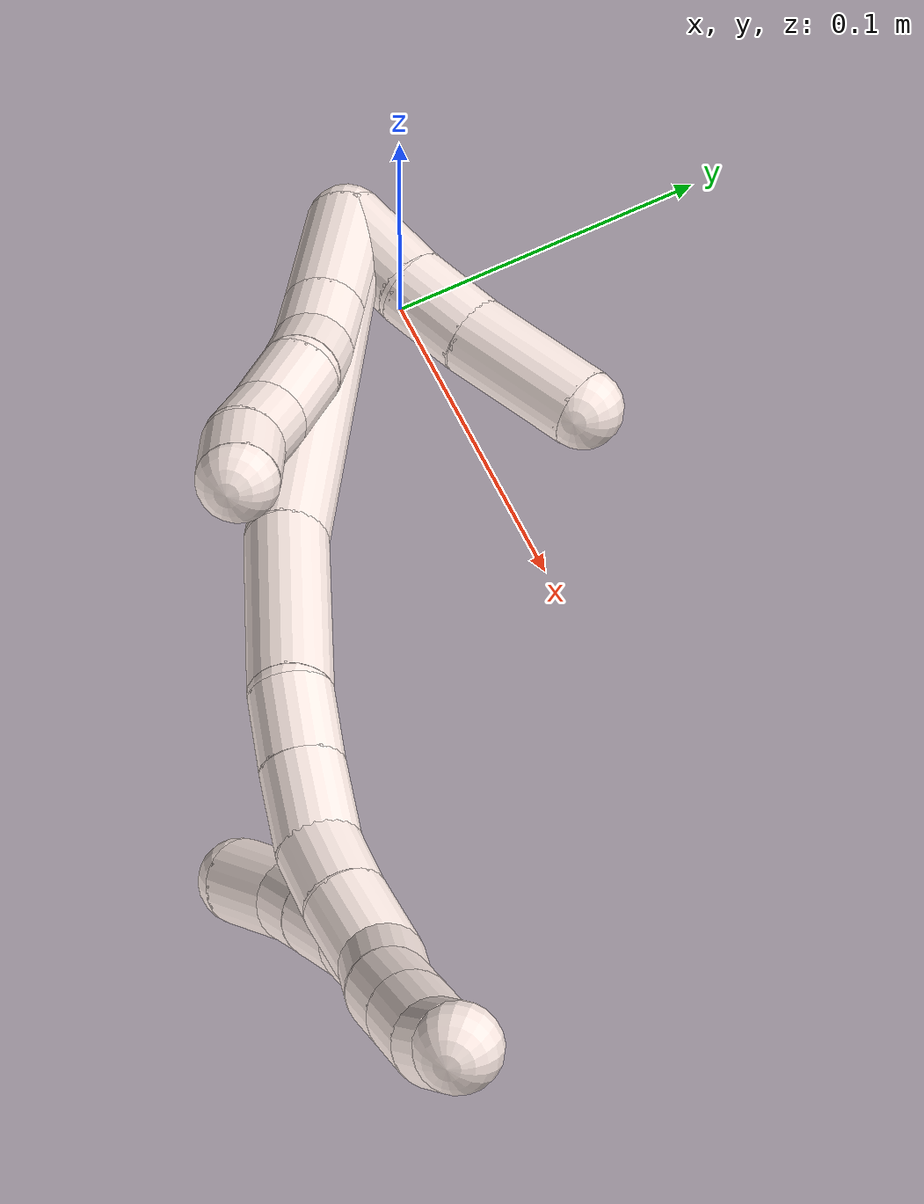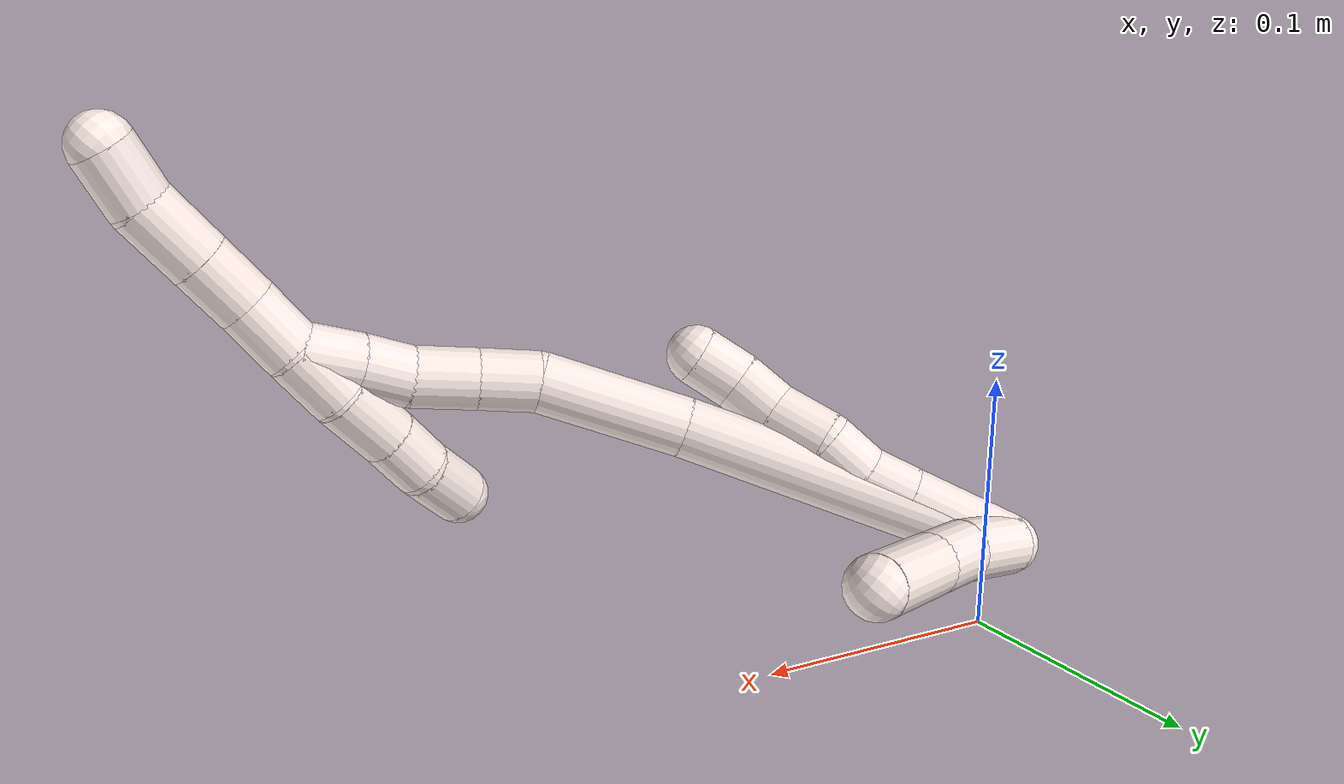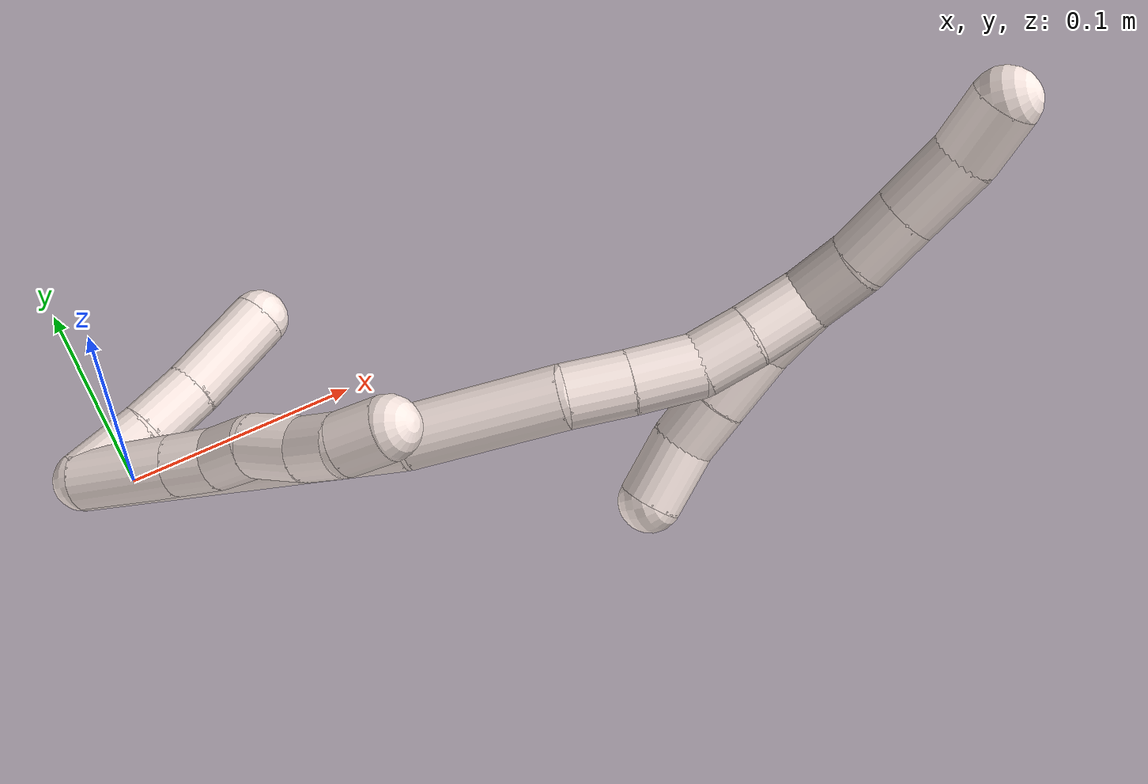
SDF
<sdf version="1.7">
 <world name="default">
  <model name="11">
   <static>0</static>
   <link name="11">
    <collision name="collision-cylinder-e_1_2_8">
     <pose>0.005576 -0.001992 0.021591 0.091984 0.251719 0.011647</pose>
     <geometry><cylinder><radius>0.0125</radius><length>0.044777</length></cylinder></geometry>
     <surface>
      <friction><ode><mu>1.16</mu><mu2>1.16</mu2><slip1>0</slip1><slip2>0</slip2></ode></friction>
      <contact><ode><kp>1e+06</kp><kd>1</kd><max_vel>0</max_vel><min_depth>0.001</min_depth></ode></contact>
     </surface>
    </collision>
    <visual name="visual-cylinder-e_1_2_8">
     <pose>0.005576 -0.001992 0.021591 0.091984 0.251719 0.011647</pose>
     <geometry><cylinder><radius>0.0125</radius><length>0.044777</length></cylinder></geometry>
     <material><ambient>1 0.933333 0.909804 1</ambient></material>
    </visual>
    <collision name="collision-cylinder-e_2_8_9">
     <pose>0.013523 -0.004865 0.052884 0.090619 0.238695 0.010874</pose>
     <geometry><cylinder><radius>0.0125</radius><length>0.020052</length></cylinder></geometry>
     <surface>
      <friction><ode><mu>1.16</mu><mu2>1.16</mu2><slip1>0</slip1><slip2>0</slip2></ode></friction>
      <contact><ode><kp>1e+06</kp><kd>1</kd><max_vel>0</max_vel><min_depth>0.001</min_depth></ode></contact>
     </surface>
    </collision>
    <visual name="visual-cylinder-e_2_8_9">
     <pose>0.013523 -0.004865 0.052884 0.090619 0.238695 0.010874</pose>
     <geometry><cylinder><radius>0.0125</radius><length>0.020052</length></cylinder></geometry>
     <material><ambient>1 0.933333 0.909804 1</ambient></material>
    </visual>
    <collision name="collision-cylinder-e_3_9_10">
     <pose>0.016073 -0.004987 0.072878 -0.073635 0.01744 -0.000642</pose>
     <geometry><cylinder><radius>0.0125</radius><length>0.020643</length></cylinder></geometry>
     <surface>
      <friction><ode><mu>1.16</mu><mu2>1.16</mu2><slip1>0</slip1><slip2>0</slip2></ode></friction>
      <contact><ode><kp>1e+06</kp><kd>1</kd><max_vel>0</max_vel><min_depth>0.001</min_depth></ode></contact>
     </surface>
    </collision>
    <visual name="visual-cylinder-e_3_9_10">
     <pose>0.016073 -0.004987 0.072878 -0.073635 0.01744 -0.000642</pose>
     <geometry><cylinder><radius>0.0125</radius><length>0.020643</length></cylinder></geometry>
     <material><ambient>1 0.933333 0.909804 1</ambient></material>
    </visual>
    <collision name="collision-cylinder-e_4_10_11">
     <pose>0.017059 -0.007211 0.094936 0.248246 0.066296 0.008274</pose>
     <geometry><cylinder><radius>0.0125</radius><length>0.024331</length></cylinder></geometry>
     <surface>
      <friction><ode><mu>1.16</mu><mu2>1.16</mu2><slip1>0</slip1><slip2>0</slip2></ode></friction>
      <contact><ode><kp>1e+06</kp><kd>1</kd><max_vel>0</max_vel><min_depth>0.001</min_depth></ode></contact>
     </surface>
    </collision>
    <visual name="visual-cylinder-e_4_10_11">
     <pose>0.017059 -0.007211 0.094936 0.248246 0.066296 0.008274</pose>
     <geometry><cylinder><radius>0.0125</radius><length>0.024331</length></cylinder></geometry>
     <material><ambient>1 0.933333 0.909804 1</ambient></material>
    </visual>
    <collision name="collision-cylinder-e_5_11_12">
     <pose>0.017483 -0.010966 0.116673 0.077332 -0.038265 -0.00148</pose>
     <geometry><cylinder><radius>0.0125</radius><length>0.020015</length></cylinder></geometry>
     <surface>
      <friction><ode><mu>1.16</mu><mu2>1.16</mu2><slip1>0</slip1><slip2>0</slip2></ode></friction>
      <contact><ode><kp>1e+06</kp><kd>1</kd><max_vel>0</max_vel><min_depth>0.001</min_depth></ode></contact>
     </surface>
    </collision>
    <visual name="visual-cylinder-e_5_11_12">
     <pose>0.017483 -0.010966 0.116673 0.077332 -0.038265 -0.00148</pose>
     <geometry><cylinder><radius>0.0125</radius><length>0.020015</length></cylinder></geometry>
     <material><ambient>1 0.933333 0.909804 1</ambient></material>
    </visual>
    <collision name="collision-cylinder-e_6_12_6">
     <pose>0.019162 -0.010952 0.13649 -0.079637 0.205789 -0.008228</pose>
     <geometry><cylinder><radius>0.0125</radius><length>0.020183</length></cylinder></geometry>
     <surface>
      <friction><ode><mu>1.16</mu><mu2>1.16</mu2><slip1>0</slip1><slip2>0</slip2></ode></friction>
      <contact><ode><kp>1e+06</kp><kd>1</kd><max_vel>0</max_vel><min_depth>0.001</min_depth></ode></contact>
     </surface>
    </collision>
    <visual name="visual-cylinder-e_6_12_6">
     <pose>0.019162 -0.010952 0.13649 -0.079637 0.205789 -0.008228</pose>
     <geometry><cylinder><radius>0.0125</radius><length>0.020183</length></cylinder></geometry>
     <material><ambient>1 0.933333 0.909804 1</ambient></material>
    </visual>
    <collision name="collision-cylinder-e_1_2_13">
     <pose>0.012135 0.005839 0.008218 -0.617729 0.877616 -0.297292</pose>
     <geometry><cylinder><radius>0.0125</radius><length>0.031552</length></cylinder></geometry>
     <surface>
      <friction><ode><mu>1.16</mu><mu2>1.16</mu2><slip1>0</slip1><slip2>0</slip2></ode></friction>
      <contact><ode><kp>1e+06</kp><kd>1</kd><max_vel>0</max_vel><min_depth>0.001</min_depth></ode></contact>
     </surface>
    </collision>
    <visual name="visual-cylinder-e_1_2_13">
     <pose>0.012135 0.005839 0.008218 -0.617729 0.877616 -0.297292</pose>
     <geometry><cylinder><radius>0.0125</radius><length>0.031552</length></cylinder></geometry>
     <material><ambient>1 0.933333 0.909804 1</ambient></material>
    </visual>
    <collision name="collision-cylinder-e_2_13_14">
     <pose>0.034846 0.017089 0.021406 -0.827783 0.963564 -0.451534</pose>
     <geometry><cylinder><radius>0.0125</radius><length>0.025756</length></cylinder></geometry>
     <surface>
      <friction><ode><mu>1.16</mu><mu2>1.16</mu2><slip1>0</slip1><slip2>0</slip2></ode></friction>
      <contact><ode><kp>1e+06</kp><kd>1</kd><max_vel>0</max_vel><min_depth>0.001</min_depth></ode></contact>
     </surface>
    </collision>
    <visual name="visual-cylinder-e_2_13_14">
     <pose>0.034846 0.017089 0.021406 -0.827783 0.963564 -0.451534</pose>
     <geometry><cylinder><radius>0.0125</radius><length>0.025756</length></cylinder></geometry>
     <material><ambient>1 0.933333 0.909804 1</ambient></material>
    </visual>
    <collision name="collision-cylinder-e_3_14_5">
     <pose>0.062359 0.032874 0.0342 -0.92467 0.916422 -0.482048</pose>
     <geometry><cylinder><radius>0.0125</radius><length>0.042692</length></cylinder></geometry>
     <surface>
      <friction><ode><mu>1.16</mu><mu2>1.16</mu2><slip1>0</slip1><slip2>0</slip2></ode></friction>
      <contact><ode><kp>1e+06</kp><kd>1</kd><max_vel>0</max_vel><min_depth>0.001</min_depth></ode></contact>
     </surface>
    </collision>
    <visual name="visual-cylinder-e_3_14_5">
     <pose>0.062359 0.032874 0.0342 -0.92467 0.916422 -0.482048</pose>
     <geometry><cylinder><radius>0.0125</radius><length>0.042692</length></cylinder></geometry>
     <material><ambient>1 0.933333 0.909804 1</ambient></material>
    </visual>
    <collision name="collision-cylinder-e_1_2_15">
     <pose>0.023357 -0.00875 0.065481 0.132842 0.339842 0.022825</pose>
     <geometry><cylinder><radius>0.0125</radius><length>0.140142</length></cylinder></geometry>
     <surface>
      <friction><ode><mu>1.16</mu><mu2>1.16</mu2><slip1>0</slip1><slip2>0</slip2></ode></friction>
      <contact><ode><kp>1e+06</kp><kd>1</kd><max_vel>0</max_vel><min_depth>0.001</min_depth></ode></contact>
     </surface>
    </collision>
    <visual name="visual-cylinder-e_1_2_15">
     <pose>0.023357 -0.00875 0.065481 0.132842 0.339842 0.022825</pose>
     <geometry><cylinder><radius>0.0125</radius><length>0.140142</length></cylinder></geometry>
     <material><ambient>1 0.933333 0.909804 1</ambient></material>
    </visual>
    <collision name="collision-cylinder-e_2_15_16">
     <pose>0.060116 -0.017987 0.158978 0.017371 0.446132 0.003941</pose>
     <geometry><cylinder><radius>0.0125</radius><length>0.06212</length></cylinder></geometry>
     <surface>
      <friction><ode><mu>1.16</mu><mu2>1.16</mu2><slip1>0</slip1><slip2>0</slip2></ode></friction>
      <contact><ode><kp>1e+06</kp><kd>1</kd><max_vel>0</max_vel><min_depth>0.001</min_depth></ode></contact>
     </surface>
    </collision>
    <visual name="visual-cylinder-e_2_15_16">
     <pose>0.060116 -0.017987 0.158978 0.017371 0.446132 0.003941</pose>
     <geometry><cylinder><radius>0.0125</radius><length>0.06212</length></cylinder></geometry>
     <material><ambient>1 0.933333 0.909804 1</ambient></material>
    </visual>
    <collision name="collision-cylinder-e_3_16_17">
     <pose>0.081436 -0.01945 0.196359 0.103853 0.699246 0.037894</pose>
     <geometry><cylinder><radius>0.0125</radius><length>0.024604</length></cylinder></geometry>
     <surface>
      <friction><ode><mu>1.16</mu><mu2>1.16</mu2><slip1>0</slip1><slip2>0</slip2></ode></friction>
      <contact><ode><kp>1e+06</kp><kd>1</kd><max_vel>0</max_vel><min_depth>0.001</min_depth></ode></contact>
     </surface>
    </collision>
    <visual name="visual-cylinder-e_3_16_17">
     <pose>0.081436 -0.01945 0.196359 0.103853 0.699246 0.037894</pose>
     <geometry><cylinder><radius>0.0125</radius><length>0.024604</length></cylinder></geometry>
     <material><ambient>1 0.933333 0.909804 1</ambient></material>
    </visual>
    <collision name="collision-cylinder-e_4_17_18">
     <pose>0.098099 -0.021055 0.215589 0.063702 0.724199 0.024137</pose>
     <geometry><cylinder><radius>0.0125</radius><length>0.026395</length></cylinder></geometry>
     <surface>
      <friction><ode><mu>1.16</mu><mu2>1.16</mu2><slip1>0</slip1><slip2>0</slip2></ode></friction>
      <contact><ode><kp>1e+06</kp><kd>1</kd><max_vel>0</max_vel><min_depth>0.001</min_depth></ode></contact>
     </surface>
    </collision>
    <visual name="visual-cylinder-e_4_17_18">
     <pose>0.098099 -0.021055 0.215589 0.063702 0.724199 0.024137</pose>
     <geometry><cylinder><radius>0.0125</radius><length>0.026395</length></cylinder></geometry>
     <material><ambient>1 0.933333 0.909804 1</ambient></material>
    </visual>
    <collision name="collision-cylinder-e_5_18_19">
     <pose>0.113101 -0.019178 0.23393 -0.287503 0.616122 -0.092051</pose>
     <geometry><cylinder><radius>0.0125</radius><length>0.02166</length></cylinder></geometry>
     <surface>
      <friction><ode><mu>1.16</mu><mu2>1.16</mu2><slip1>0</slip1><slip2>0</slip2></ode></friction>
      <contact><ode><kp>1e+06</kp><kd>1</kd><max_vel>0</max_vel><min_depth>0.001</min_depth></ode></contact>
     </surface>
    </collision>
    <visual name="visual-cylinder-e_5_18_19">
     <pose>0.113101 -0.019178 0.23393 -0.287503 0.616122 -0.092051</pose>
     <geometry><cylinder><radius>0.0125</radius><length>0.02166</length></cylinder></geometry>
     <material><ambient>1 0.933333 0.909804 1</ambient></material>
    </visual>
    <collision name="collision-cylinder-e_6_19_1">
     <pose>0.127297 -0.013275 0.251498 -0.357558 0.685523 -0.128792</pose>
     <geometry><cylinder><radius>0.0125</radius><length>0.025078</length></cylinder></geometry>
     <surface>
      <friction><ode><mu>1.16</mu><mu2>1.16</mu2><slip1>0</slip1><slip2>0</slip2></ode></friction>
      <contact><ode><kp>1e+06</kp><kd>1</kd><max_vel>0</max_vel><min_depth>0.001</min_depth></ode></contact>
     </surface>
    </collision>
    <visual name="visual-cylinder-e_6_19_1">
     <pose>0.127297 -0.013275 0.251498 -0.357558 0.685523 -0.128792</pose>
     <geometry><cylinder><radius>0.0125</radius><length>0.025078</length></cylinder></geometry>
     <material><ambient>1 0.933333 0.909804 1</ambient></material>
    </visual>
    <collision name="collision-cylinder-e_1_1_20">
     <pose>0.133641 -0.015902 0.249963 2.62588 -0.129818 -0.483306</pose>
     <geometry><cylinder><radius>0.0125</radius><length>0.024641</length></cylinder></geometry>
     <surface>
      <friction><ode><mu>1.16</mu><mu2>1.16</mu2><slip1>0</slip1><slip2>0</slip2></ode></friction>
      <contact><ode><kp>1e+06</kp><kd>1</kd><max_vel>0</max_vel><min_depth>0.001</min_depth></ode></contact>
     </surface>
    </collision>
    <visual name="visual-cylinder-e_1_1_20">
     <pose>0.133641 -0.015902 0.249963 2.62588 -0.129818 -0.483306</pose>
     <geometry><cylinder><radius>0.0125</radius><length>0.024641</length></cylinder></geometry>
     <material><ambient>1 0.933333 0.909804 1</ambient></material>
    </visual>
    <collision name="collision-cylinder-e_2_20_21">
     <pose>0.128765 -0.030003 0.228635 2.49501 -0.240038 -0.691014</pose>
     <geometry><cylinder><radius>0.0125</radius><length>0.027602</length></cylinder></geometry>
     <surface>
      <friction><ode><mu>1.16</mu><mu2>1.16</mu2><slip1>0</slip1><slip2>0</slip2></ode></friction>
      <contact><ode><kp>1e+06</kp><kd>1</kd><max_vel>0</max_vel><min_depth>0.001</min_depth></ode></contact>
     </surface>
    </collision>
    <visual name="visual-cylinder-e_2_20_21">
     <pose>0.128765 -0.030003 0.228635 2.49501 -0.240038 -0.691014</pose>
     <geometry><cylinder><radius>0.0125</radius><length>0.027602</length></cylinder></geometry>
     <material><ambient>1 0.933333 0.909804 1</ambient></material>
    </visual>
    <collision name="collision-cylinder-e_3_21_22">
     <pose>0.123418 -0.044309 0.209593 2.50021 -0.195838 -0.575092</pose>
     <geometry><cylinder><radius>0.0125</radius><length>0.021228</length></cylinder></geometry>
     <surface>
      <friction><ode><mu>1.16</mu><mu2>1.16</mu2><slip1>0</slip1><slip2>0</slip2></ode></friction>
      <contact><ode><kp>1e+06</kp><kd>1</kd><max_vel>0</max_vel><min_depth>0.001</min_depth></ode></contact>
     </surface>
    </collision>
    <visual name="visual-cylinder-e_3_21_22">
     <pose>0.123418 -0.044309 0.209593 2.50021 -0.195838 -0.575092</pose>
     <geometry><cylinder><radius>0.0125</radius><length>0.021228</length></cylinder></geometry>
     <material><ambient>1 0.933333 0.909804 1</ambient></material>
    </visual>
    <collision name="collision-cylinder-e_4_22_4">
     <pose>0.116801 -0.059956 0.193096 2.28447 -0.350294 -0.739063</pose>
     <geometry><cylinder><radius>0.0125</radius><length>0.026528</length></cylinder></geometry>
     <surface>
      <friction><ode><mu>1.16</mu><mu2>1.16</mu2><slip1>0</slip1><slip2>0</slip2></ode></friction>
      <contact><ode><kp>1e+06</kp><kd>1</kd><max_vel>0</max_vel><min_depth>0.001</min_depth></ode></contact>
     </surface>
    </collision>
    <visual name="visual-cylinder-e_4_22_4">
     <pose>0.116801 -0.059956 0.193096 2.28447 -0.350294 -0.739063</pose>
     <geometry><cylinder><radius>0.0125</radius><length>0.026528</length></cylinder></geometry>
     <material><ambient>1 0.933333 0.909804 1</ambient></material>
    </visual>
    <collision name="collision-cylinder-e_1_1_23">
     <pose>0.135981 -0.005418 0.272066 -0.370707 0.060494 -0.011346</pose>
     <geometry><cylinder><radius>0.0125</radius><length>0.024667</length></cylinder></geometry>
     <surface>
      <friction><ode><mu>1.16</mu><mu2>1.16</mu2><slip1>0</slip1><slip2>0</slip2></ode></friction>
      <contact><ode><kp>1e+06</kp><kd>1</kd><max_vel>0</max_vel><min_depth>0.001</min_depth></ode></contact>
     </surface>
    </collision>
    <visual name="visual-cylinder-e_1_1_23">
     <pose>0.135981 -0.005418 0.272066 -0.370707 0.060494 -0.011346</pose>
     <geometry><cylinder><radius>0.0125</radius><length>0.024667</length></cylinder></geometry>
     <material><ambient>1 0.933333 0.909804 1</ambient></material>
    </visual>
    <collision name="collision-cylinder-e_2_23_24">
     <pose>0.138369 0.004806 0.293795 -0.512038 0.138685 -0.036357</pose>
     <geometry><cylinder><radius>0.0125</radius><length>0.023755</length></cylinder></geometry>
     <surface>
      <friction><ode><mu>1.16</mu><mu2>1.16</mu2><slip1>0</slip1><slip2>0</slip2></ode></friction>
      <contact><ode><kp>1e+06</kp><kd>1</kd><max_vel>0</max_vel><min_depth>0.001</min_depth></ode></contact>
     </surface>
    </collision>
    <visual name="visual-cylinder-e_2_23_24">
     <pose>0.138369 0.004806 0.293795 -0.512038 0.138685 -0.036357</pose>
     <geometry><cylinder><radius>0.0125</radius><length>0.023755</length></cylinder></geometry>
     <material><ambient>1 0.933333 0.909804 1</ambient></material>
    </visual>
    <collision name="collision-cylinder-e_3_24_25">
     <pose>0.141935 0.01726 0.316106 -0.506639 0.13865 -0.035948</pose>
     <geometry><cylinder><radius>0.0125</radius><length>0.027844</length></cylinder></geometry>
     <surface>
      <friction><ode><mu>1.16</mu><mu2>1.16</mu2><slip1>0</slip1><slip2>0</slip2></ode></friction>
      <contact><ode><kp>1e+06</kp><kd>1</kd><max_vel>0</max_vel><min_depth>0.001</min_depth></ode></contact>
     </surface>
    </collision>
    <visual name="visual-cylinder-e_3_24_25">
     <pose>0.141935 0.01726 0.316106 -0.506639 0.13865 -0.035948</pose>
     <geometry><cylinder><radius>0.0125</radius><length>0.027844</length></cylinder></geometry>
     <material><ambient>1 0.933333 0.909804 1</ambient></material>
    </visual>
    <collision name="collision-cylinder-e_4_25_3">
     <pose>0.143249 0.031029 0.337668 -0.640061 -0.051441 0.017052</pose>
     <geometry><cylinder><radius>0.0125</radius><length>0.023733</length></cylinder></geometry>
     <surface>
      <friction><ode><mu>1.16</mu><mu2>1.16</mu2><slip1>0</slip1><slip2>0</slip2></ode></friction>
      <contact><ode><kp>1e+06</kp><kd>1</kd><max_vel>0</max_vel><min_depth>0.001</min_depth></ode></contact>
     </surface>
    </collision>
    <visual name="visual-cylinder-e_4_25_3">
     <pose>0.143249 0.031029 0.337668 -0.640061 -0.051441 0.017052</pose>
     <geometry><cylinder><radius>0.0125</radius><length>0.023733</length></cylinder></geometry>
     <material><ambient>1 0.933333 0.909804 1</ambient></material>
    </visual>
    <collision name="collision-sphere-3">
     <pose>0.142639 0.038107 0.347173 0 -0 0</pose>
     <geometry><sphere><radius>0.0125</radius></sphere></geometry>
     <surface>
      <friction><ode><mu>1.16</mu><mu2>1.16</mu2><slip1>0</slip1><slip2>0</slip2></ode></friction>
      <contact><ode><kp>1e+06</kp><kd>1</kd><max_vel>0</max_vel><min_depth>0.001</min_depth></ode></contact>
     </surface>
    </collision>
    <visual name="visual-sphere-3">
     <pose>0.142639 0.038107 0.347173 0 -0 0</pose>
     <geometry><sphere><radius>0.0125</radius></sphere></geometry>
     <material><ambient>1 0.933333 0.909804 1</ambient></material>
    </visual>
    <collision name="collision-sphere-25">
     <pose>0.143859 0.023951 0.328163 0 -0 0</pose>
     <geometry><sphere><radius>0.0125</radius></sphere></geometry>
     <surface>
      <friction><ode><mu>1.16</mu><mu2>1.16</mu2><slip1>0</slip1><slip2>0</slip2></ode></friction>
      <contact><ode><kp>1e+06</kp><kd>1</kd><max_vel>0</max_vel><min_depth>0.001</min_depth></ode></contact>
     </surface>
    </collision>
    <visual name="visual-sphere-25">
     <pose>0.143859 0.023951 0.328163 0 -0 0</pose>
     <geometry><sphere><radius>0.0125</radius></sphere></geometry>
     <material><ambient>1 0.933333 0.909804 1</ambient></material>
    </visual>
    <collision name="collision-sphere-24">
     <pose>0.140011 0.010569 0.30405 0 -0 0</pose>
     <geometry><sphere><radius>0.0125</radius></sphere></geometry>
     <surface>
      <friction><ode><mu>1.16</mu><mu2>1.16</mu2><slip1>0</slip1><slip2>0</slip2></ode></friction>
      <contact><ode><kp>1e+06</kp><kd>1</kd><max_vel>0</max_vel><min_depth>0.001</min_depth></ode></contact>
     </surface>
    </collision>
    <visual name="visual-sphere-24">
     <pose>0.140011 0.010569 0.30405 0 -0 0</pose>
     <geometry><sphere><radius>0.0125</radius></sphere></geometry>
     <material><ambient>1 0.933333 0.909804 1</ambient></material>
    </visual>
    <collision name="collision-sphere-23">
     <pose>0.136727 -0.000958 0.28354 0 -0 0</pose>
     <geometry><sphere><radius>0.0125</radius></sphere></geometry>
     <surface>
      <friction><ode><mu>1.16</mu><mu2>1.16</mu2><slip1>0</slip1><slip2>0</slip2></ode></friction>
      <contact><ode><kp>1e+06</kp><kd>1</kd><max_vel>0</max_vel><min_depth>0.001</min_depth></ode></contact>
     </surface>
    </collision>
    <visual name="visual-sphere-23">
     <pose>0.136727 -0.000958 0.28354 0 -0 0</pose>
     <geometry><sphere><radius>0.0125</radius></sphere></geometry>
     <material><ambient>1 0.933333 0.909804 1</ambient></material>
    </visual>
    <collision name="collision-sphere-4">
     <pose>0.112249 -0.069374 0.18494 0 -0 0</pose>
     <geometry><sphere><radius>0.0125</radius></sphere></geometry>
     <surface>
      <friction><ode><mu>1.16</mu><mu2>1.16</mu2><slip1>0</slip1><slip2>0</slip2></ode></friction>
      <contact><ode><kp>1e+06</kp><kd>1</kd><max_vel>0</max_vel><min_depth>0.001</min_depth></ode></contact>
     </surface>
    </collision>
    <visual name="visual-sphere-4">
     <pose>0.112249 -0.069374 0.18494 0 -0 0</pose>
     <geometry><sphere><radius>0.0125</radius></sphere></geometry>
     <material><ambient>1 0.933333 0.909804 1</ambient></material>
    </visual>
    <collision name="collision-sphere-22">
     <pose>0.121353 -0.050538 0.201251 0 -0 0</pose>
     <geometry><sphere><radius>0.0125</radius></sphere></geometry>
     <surface>
      <friction><ode><mu>1.16</mu><mu2>1.16</mu2><slip1>0</slip1><slip2>0</slip2></ode></friction>
      <contact><ode><kp>1e+06</kp><kd>1</kd><max_vel>0</max_vel><min_depth>0.001</min_depth></ode></contact>
     </surface>
    </collision>
    <visual name="visual-sphere-22">
     <pose>0.121353 -0.050538 0.201251 0 -0 0</pose>
     <geometry><sphere><radius>0.0125</radius></sphere></geometry>
     <material><ambient>1 0.933333 0.909804 1</ambient></material>
    </visual>
    <collision name="collision-sphere-21">
     <pose>0.125484 -0.03808 0.217936 0 -0 0</pose>
     <geometry><sphere><radius>0.0125</radius></sphere></geometry>
     <surface>
      <friction><ode><mu>1.16</mu><mu2>1.16</mu2><slip1>0</slip1><slip2>0</slip2></ode></friction>
      <contact><ode><kp>1e+06</kp><kd>1</kd><max_vel>0</max_vel><min_depth>0.001</min_depth></ode></contact>
     </surface>
    </collision>
    <visual name="visual-sphere-21">
     <pose>0.125484 -0.03808 0.217936 0 -0 0</pose>
     <geometry><sphere><radius>0.0125</radius></sphere></geometry>
     <material><ambient>1 0.933333 0.909804 1</ambient></material>
    </visual>
    <collision name="collision-sphere-20">
     <pose>0.132046 -0.021927 0.239335 0 -0 0</pose>
     <geometry><sphere><radius>0.0125</radius></sphere></geometry>
     <surface>
      <friction><ode><mu>1.16</mu><mu2>1.16</mu2><slip1>0</slip1><slip2>0</slip2></ode></friction>
      <contact><ode><kp>1e+06</kp><kd>1</kd><max_vel>0</max_vel><min_depth>0.001</min_depth></ode></contact>
     </surface>
    </collision>
    <visual name="visual-sphere-20">
     <pose>0.132046 -0.021927 0.239335 0 -0 0</pose>
     <geometry><sphere><radius>0.0125</radius></sphere></geometry>
     <material><ambient>1 0.933333 0.909804 1</ambient></material>
    </visual>
    <collision name="collision-sphere-12">
     <pose>0.0171 -0.011738 0.126643 0 -0 0</pose>
     <geometry><sphere><radius>0.0125</radius></sphere></geometry>
     <surface>
      <friction><ode><mu>1.16</mu><mu2>1.16</mu2><slip1>0</slip1><slip2>0</slip2></ode></friction>
      <contact><ode><kp>1e+06</kp><kd>1</kd><max_vel>0</max_vel><min_depth>0.001</min_depth></ode></contact>
     </surface>
    </collision>
    <visual name="visual-sphere-12">
     <pose>0.0171 -0.011738 0.126643 0 -0 0</pose>
     <geometry><sphere><radius>0.0125</radius></sphere></geometry>
     <material><ambient>1 0.933333 0.909804 1</ambient></material>
    </visual>
    <collision name="collision-sphere-11">
     <pose>0.017865 -0.010193 0.106703 0 -0 0</pose>
     <geometry><sphere><radius>0.0125</radius></sphere></geometry>
     <surface>
      <friction><ode><mu>1.16</mu><mu2>1.16</mu2><slip1>0</slip1><slip2>0</slip2></ode></friction>
      <contact><ode><kp>1e+06</kp><kd>1</kd><max_vel>0</max_vel><min_depth>0.001</min_depth></ode></contact>
     </surface>
    </collision>
    <visual name="visual-sphere-11">
     <pose>0.017865 -0.010193 0.106703 0 -0 0</pose>
     <geometry><sphere><radius>0.0125</radius></sphere></geometry>
     <material><ambient>1 0.933333 0.909804 1</ambient></material>
    </visual>
    <collision name="collision-sphere-10">
     <pose>0.016253 -0.004228 0.08317 0 -0 0</pose>
     <geometry><sphere><radius>0.0125</radius></sphere></geometry>
     <surface>
      <friction><ode><mu>1.16</mu><mu2>1.16</mu2><slip1>0</slip1><slip2>0</slip2></ode></friction>
      <contact><ode><kp>1e+06</kp><kd>1</kd><max_vel>0</max_vel><min_depth>0.001</min_depth></ode></contact>
     </surface>
    </collision>
    <visual name="visual-sphere-10">
     <pose>0.016253 -0.004228 0.08317 0 -0 0</pose>
     <geometry><sphere><radius>0.0125</radius></sphere></geometry>
     <material><ambient>1 0.933333 0.909804 1</ambient></material>
    </visual>
    <collision name="collision-sphere-9">
     <pose>0.015893 -0.005746 0.062586 0 -0 0</pose>
     <geometry><sphere><radius>0.0125</radius></sphere></geometry>
     <surface>
      <friction><ode><mu>1.16</mu><mu2>1.16</mu2><slip1>0</slip1><slip2>0</slip2></ode></friction>
      <contact><ode><kp>1e+06</kp><kd>1</kd><max_vel>0</max_vel><min_depth>0.001</min_depth></ode></contact>
     </surface>
    </collision>
    <visual name="visual-sphere-9">
     <pose>0.015893 -0.005746 0.062586 0 -0 0</pose>
     <geometry><sphere><radius>0.0125</radius></sphere></geometry>
     <material><ambient>1 0.933333 0.909804 1</ambient></material>
    </visual>
    <collision name="collision-sphere-2">
     <geometry><sphere><radius>0.0125</radius></sphere></geometry>
     <surface>
      <friction><ode><mu>1.16</mu><mu2>1.16</mu2><slip1>0</slip1><slip2>0</slip2></ode></friction>
      <contact><ode><kp>1e+06</kp><kd>1</kd><max_vel>0</max_vel><min_depth>0.001</min_depth></ode></contact>
     </surface>
    </collision>
    <visual name="visual-sphere-2">
     <geometry><sphere><radius>0.0125</radius></sphere></geometry>
     <material><ambient>1 0.933333 0.909804 1</ambient></material>
    </visual>
    <collision name="collision-sphere-19">
     <pose>0.119359 -0.016672 0.242406 0 -0 0</pose>
     <geometry><sphere><radius>0.0125</radius></sphere></geometry>
     <surface>
      <friction><ode><mu>1.16</mu><mu2>1.16</mu2><slip1>0</slip1><slip2>0</slip2></ode></friction>
      <contact><ode><kp>1e+06</kp><kd>1</kd><max_vel>0</max_vel><min_depth>0.001</min_depth></ode></contact>
     </surface>
    </collision>
    <visual name="visual-sphere-19">
     <pose>0.119359 -0.016672 0.242406 0 -0 0</pose>
     <geometry><sphere><radius>0.0125</radius></sphere></geometry>
     <material><ambient>1 0.933333 0.909804 1</ambient></material>
    </visual>
    <collision name="collision-sphere-8">
     <pose>0.011153 -0.003983 0.043182 0 -0 0</pose>
     <geometry><sphere><radius>0.0125</radius></sphere></geometry>
     <surface>
      <friction><ode><mu>1.16</mu><mu2>1.16</mu2><slip1>0</slip1><slip2>0</slip2></ode></friction>
      <contact><ode><kp>1e+06</kp><kd>1</kd><max_vel>0</max_vel><min_depth>0.001</min_depth></ode></contact>
     </surface>
    </collision>
    <visual name="visual-sphere-8">
     <pose>0.011153 -0.003983 0.043182 0 -0 0</pose>
     <geometry><sphere><radius>0.0125</radius></sphere></geometry>
     <material><ambient>1 0.933333 0.909804 1</ambient></material>
    </visual>
    <collision name="collision-sphere-6">
     <pose>0.021224 -0.010166 0.146337 0 -0 0</pose>
     <geometry><sphere><radius>0.0125</radius></sphere></geometry>
     <surface>
      <friction><ode><mu>1.16</mu><mu2>1.16</mu2><slip1>0</slip1><slip2>0</slip2></ode></friction>
      <contact><ode><kp>1e+06</kp><kd>1</kd><max_vel>0</max_vel><min_depth>0.001</min_depth></ode></contact>
     </surface>
    </collision>
    <visual name="visual-sphere-6">
     <pose>0.021224 -0.010166 0.146337 0 -0 0</pose>
     <geometry><sphere><radius>0.0125</radius></sphere></geometry>
     <material><ambient>1 0.933333 0.909804 1</ambient></material>
    </visual>
    <collision name="collision-sphere-13">
     <pose>0.02427 0.011677 0.016435 0 -0 0</pose>
     <geometry><sphere><radius>0.0125</radius></sphere></geometry>
     <surface>
      <friction><ode><mu>1.16</mu><mu2>1.16</mu2><slip1>0</slip1><slip2>0</slip2></ode></friction>
      <contact><ode><kp>1e+06</kp><kd>1</kd><max_vel>0</max_vel><min_depth>0.001</min_depth></ode></contact>
     </surface>
    </collision>
    <visual name="visual-sphere-13">
     <pose>0.02427 0.011677 0.016435 0 -0 0</pose>
     <geometry><sphere><radius>0.0125</radius></sphere></geometry>
     <material><ambient>1 0.933333 0.909804 1</ambient></material>
    </visual>
    <collision name="collision-sphere-14">
     <pose>0.045422 0.0225 0.026378 0 -0 0</pose>
     <geometry><sphere><radius>0.0125</radius></sphere></geometry>
     <surface>
      <friction><ode><mu>1.16</mu><mu2>1.16</mu2><slip1>0</slip1><slip2>0</slip2></ode></friction>
      <contact><ode><kp>1e+06</kp><kd>1</kd><max_vel>0</max_vel><min_depth>0.001</min_depth></ode></contact>
     </surface>
    </collision>
    <visual name="visual-sphere-14">
     <pose>0.045422 0.0225 0.026378 0 -0 0</pose>
     <geometry><sphere><radius>0.0125</radius></sphere></geometry>
     <material><ambient>1 0.933333 0.909804 1</ambient></material>
    </visual>
    <collision name="collision-sphere-5">
     <pose>0.079295 0.043247 0.042023 0 -0 0</pose>
     <geometry><sphere><radius>0.0125</radius></sphere></geometry>
     <surface>
      <friction><ode><mu>1.16</mu><mu2>1.16</mu2><slip1>0</slip1><slip2>0</slip2></ode></friction>
      <contact><ode><kp>1e+06</kp><kd>1</kd><max_vel>0</max_vel><min_depth>0.001</min_depth></ode></contact>
     </surface>
    </collision>
    <visual name="visual-sphere-5">
     <pose>0.079295 0.043247 0.042023 0 -0 0</pose>
     <geometry><sphere><radius>0.0125</radius></sphere></geometry>
     <material><ambient>1 0.933333 0.909804 1</ambient></material>
    </visual>
    <collision name="collision-sphere-15">
     <pose>0.046715 -0.0175 0.130962 0 -0 0</pose>
     <geometry><sphere><radius>0.0125</radius></sphere></geometry>
     <surface>
      <friction><ode><mu>1.16</mu><mu2>1.16</mu2><slip1>0</slip1><slip2>0</slip2></ode></friction>
      <contact><ode><kp>1e+06</kp><kd>1</kd><max_vel>0</max_vel><min_depth>0.001</min_depth></ode></contact>
     </surface>
    </collision>
    <visual name="visual-sphere-15">
     <pose>0.046715 -0.0175 0.130962 0 -0 0</pose>
     <geometry><sphere><radius>0.0125</radius></sphere></geometry>
     <material><ambient>1 0.933333 0.909804 1</ambient></material>
    </visual>
    <collision name="collision-sphere-16">
     <pose>0.073518 -0.018474 0.186994 0 -0 0</pose>
     <geometry><sphere><radius>0.0125</radius></sphere></geometry>
     <surface>
      <friction><ode><mu>1.16</mu><mu2>1.16</mu2><slip1>0</slip1><slip2>0</slip2></ode></friction>
      <contact><ode><kp>1e+06</kp><kd>1</kd><max_vel>0</max_vel><min_depth>0.001</min_depth></ode></contact>
     </surface>
    </collision>
    <visual name="visual-sphere-16">
     <pose>0.073518 -0.018474 0.186994 0 -0 0</pose>
     <geometry><sphere><radius>0.0125</radius></sphere></geometry>
     <material><ambient>1 0.933333 0.909804 1</ambient></material>
    </visual>
    <collision name="collision-sphere-17">
     <pose>0.089355 -0.020426 0.205723 0 -0 0</pose>
     <geometry><sphere><radius>0.0125</radius></sphere></geometry>
     <surface>
      <friction><ode><mu>1.16</mu><mu2>1.16</mu2><slip1>0</slip1><slip2>0</slip2></ode></friction>
      <contact><ode><kp>1e+06</kp><kd>1</kd><max_vel>0</max_vel><min_depth>0.001</min_depth></ode></contact>
     </surface>
    </collision>
    <visual name="visual-sphere-17">
     <pose>0.089355 -0.020426 0.205723 0 -0 0</pose>
     <geometry><sphere><radius>0.0125</radius></sphere></geometry>
     <material><ambient>1 0.933333 0.909804 1</ambient></material>
    </visual>
    <collision name="collision-sphere-18">
     <pose>0.106842 -0.021684 0.225454 0 -0 0</pose>
     <geometry><sphere><radius>0.0125</radius></sphere></geometry>
     <surface>
      <friction><ode><mu>1.16</mu><mu2>1.16</mu2><slip1>0</slip1><slip2>0</slip2></ode></friction>
      <contact><ode><kp>1e+06</kp><kd>1</kd><max_vel>0</max_vel><min_depth>0.001</min_depth></ode></contact>
     </surface>
    </collision>
    <visual name="visual-sphere-18">
     <pose>0.106842 -0.021684 0.225454 0 -0 0</pose>
     <geometry><sphere><radius>0.0125</radius></sphere></geometry>
     <material><ambient>1 0.933333 0.909804 1</ambient></material>
    </visual>
    <collision name="collision-sphere-1">
     <pose>0.135236 -0.009878 0.260591 0 -0 0</pose>
     <geometry><sphere><radius>0.0125</radius></sphere></geometry>
     <surface>
      <friction><ode><mu>1.16</mu><mu2>1.16</mu2><slip1>0</slip1><slip2>0</slip2></ode></friction>
      <contact><ode><kp>1e+06</kp><kd>1</kd><max_vel>0</max_vel><min_depth>0.001</min_depth></ode></contact>
     </surface>
    </collision>
    <visual name="visual-sphere-1">
     <pose>0.135236 -0.009878 0.260591 0 -0 0</pose>
     <geometry><sphere><radius>0.0125</radius></sphere></geometry>
     <material><ambient>1 0.933333 0.909804 1</ambient></material>
    </visual>
    <inertial>
     <pose>0.066332 -0.00741 0.142265 0 -0 0</pose>
     <mass>0.75</mass>
     <inertia>
      <ixx>0.000303</ixx>
      <ixy>0</ixy>
      <ixz>0</ixz>
      <iyy>0.000293</iyy>
      <iyz>0</iyz>
      <izz>-4.6e-05</izz>
     </inertia>
    </inertial>
   </link>
   <pose>-0.019829 -0.008384 0.027374 0.771765 0.536588 0.328141</pose>
  </model>
 </world>
</sdf>
